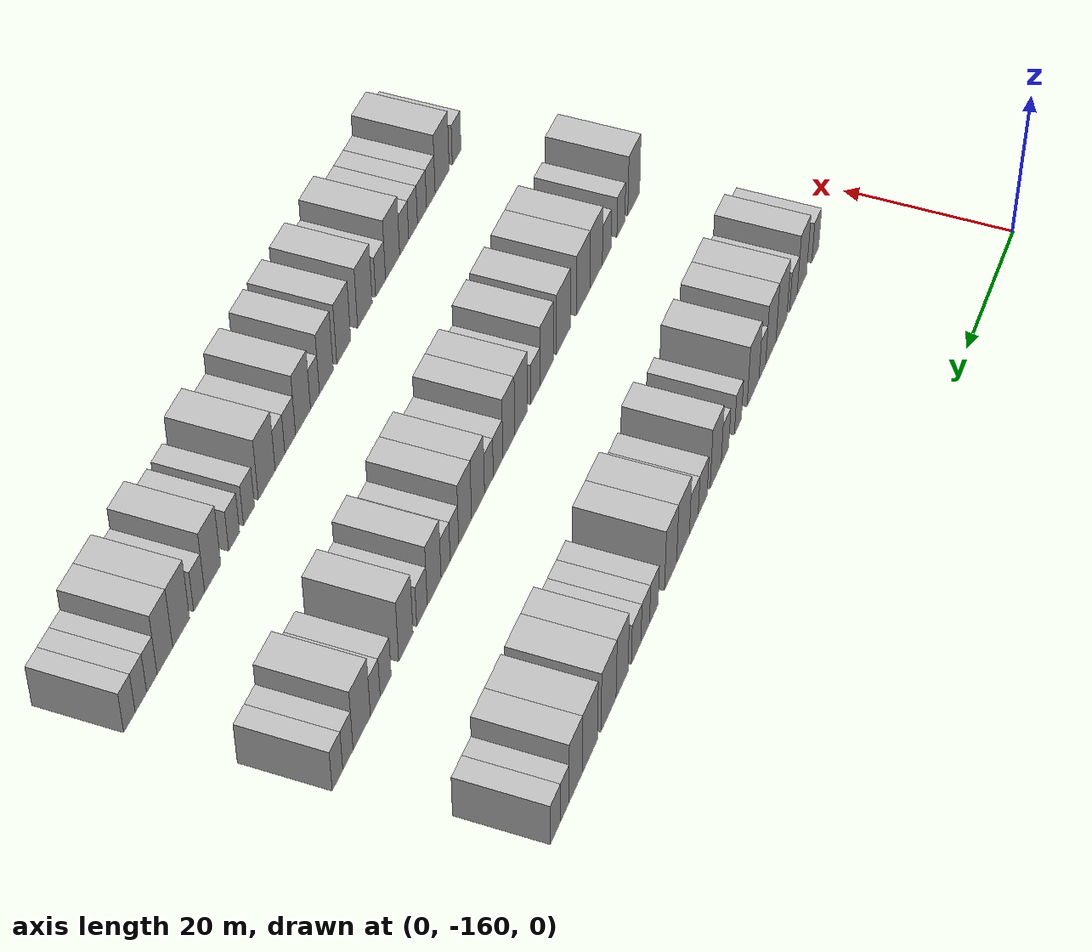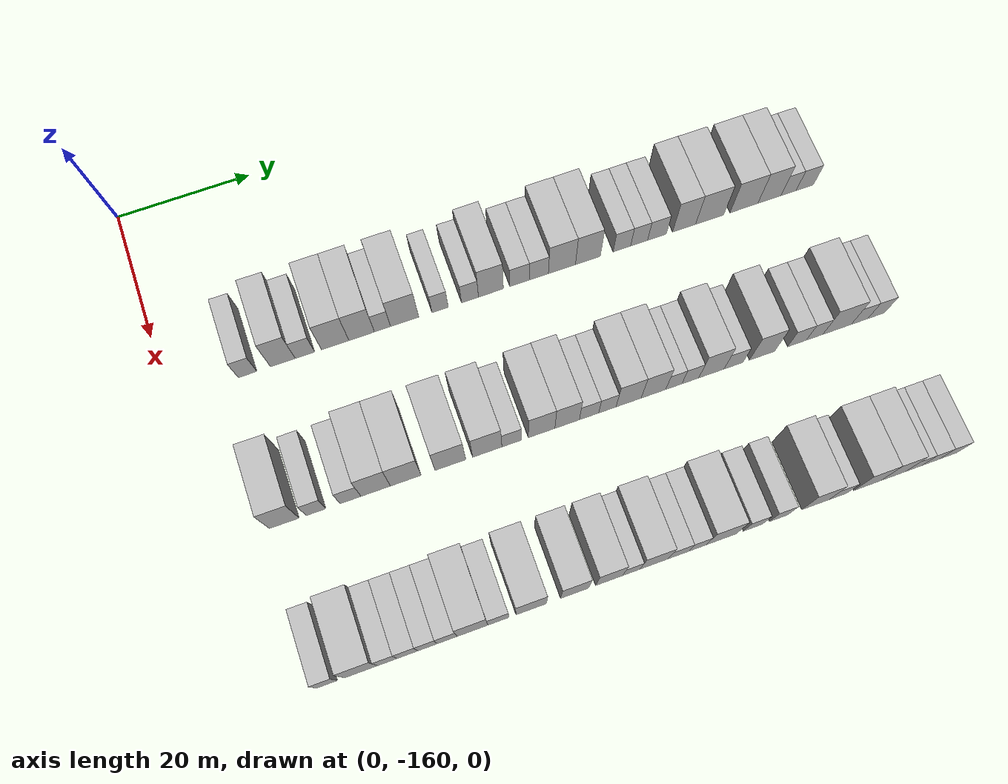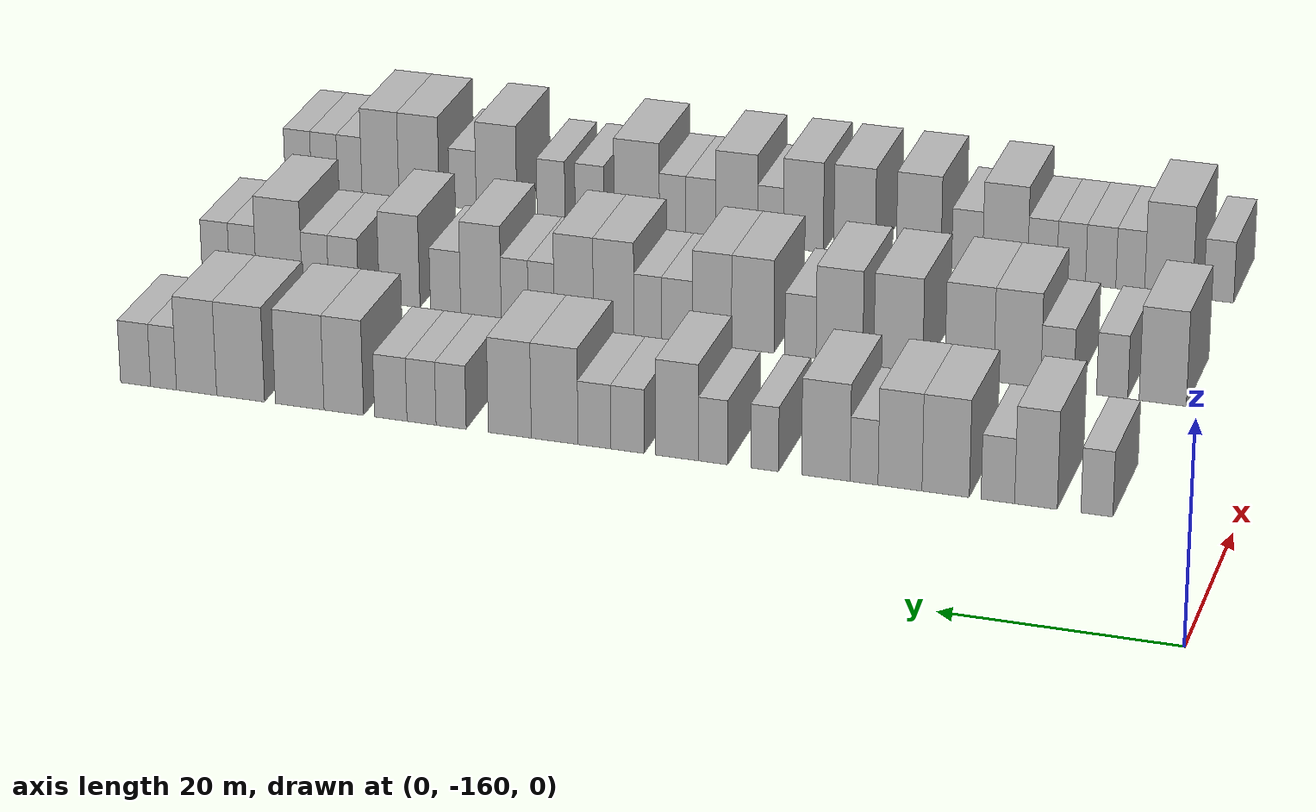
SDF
<sdf version="1.6">
 <world name="default">
  <model name="building_26">
   <static>1</static>
   <pose>25.0000 -148.5722 0 0.000000 0.000000 0.000000</pose>
   <link name="link">
    <pose>0 0 3.00 0 0 0</pose>
    <collision name="collision"><geometry><box><size>10.0000 2.6973 6.0000</size></box></geometry></collision>
    <visual name="visual">
     <cast_shadows>0</cast_shadows>
     <geometry><box><size>10.0000 2.6973 6.0000</size></box></geometry>
     <material>
      <script>
       <uri>model://HANNAS_wall/materials/scripts</uri>
       <uri>model://HANNAS_wall/materials/textures</uri>
       <name>vrc/HANNAS_wall</name>
      </script>
     </material>
    </visual>
   </link>
  </model>
  <model name="building_27">
   <static>1</static>
   <pose>25.0000 -143.4111 0 0.000000 0.000000 0.000000</pose>
   <link name="link">
    <pose>0 0 4.50 0 0 0</pose>
    <collision name="collision"><geometry><box><size>10.0000 3.6249 9.0000</size></box></geometry></collision>
    <visual name="visual">
     <cast_shadows>0</cast_shadows>
     <geometry><box><size>10.0000 3.6249 9.0000</size></box></geometry>
     <material>
      <script>
       <uri>model://HANNAS_wall/materials/scripts</uri>
       <uri>model://HANNAS_wall/materials/textures</uri>
       <name>vrc/HANNAS_wall</name>
      </script>
     </material>
    </visual>
   </link>
  </model>
  <model name="building_28">
   <static>1</static>
   <pose>25.0000 -140.1677 0 0.000000 0.000000 0.000000</pose>
   <link name="link">
    <pose>0 0 3.00 0 0 0</pose>
    <collision name="collision"><geometry><box><size>10.0000 2.8621 6.0000</size></box></geometry></collision>
    <visual name="visual">
     <cast_shadows>0</cast_shadows>
     <geometry><box><size>10.0000 2.8621 6.0000</size></box></geometry>
     <material>
      <script>
       <uri>model://HANNAS_wall/materials/scripts</uri>
       <uri>model://HANNAS_wall/materials/textures</uri>
       <name>vrc/HANNAS_wall</name>
      </script>
     </material>
    </visual>
   </link>
  </model>
  <model name="building_29">
   <static>1</static>
   <pose>25.0000 -135.7053 0 0.000000 0.000000 0.000000</pose>
   <link name="link">
    <pose>0 0 4.50 0 0 0</pose>
    <collision name="collision"><geometry><box><size>10.0000 4.0627 9.0000</size></box></geometry></collision>
    <visual name="visual">
     <cast_shadows>0</cast_shadows>
     <geometry><box><size>10.0000 4.0627 9.0000</size></box></geometry>
     <material>
      <script>
       <uri>model://HANNAS_wall/materials/scripts</uri>
       <uri>model://HANNAS_wall/materials/textures</uri>
       <name>vrc/HANNAS_wall</name>
      </script>
     </material>
    </visual>
   </link>
  </model>
  <model name="building_30">
   <static>1</static>
   <pose>25.0000 -131.7794 0 0.000000 0.000000 0.000000</pose>
   <link name="link">
    <pose>0 0 4.50 0 0 0</pose>
    <collision name="collision"><geometry><box><size>10.0000 3.7890 9.0000</size></box></geometry></collision>
    <visual name="visual">
     <cast_shadows>0</cast_shadows>
     <geometry><box><size>10.0000 3.7890 9.0000</size></box></geometry>
     <material>
      <script>
       <uri>model://HANNAS_wall/materials/scripts</uri>
       <uri>model://HANNAS_wall/materials/textures</uri>
       <name>vrc/HANNAS_wall</name>
      </script>
     </material>
    </visual>
   </link>
  </model>
  <model name="building_31">
   <static>1</static>
   <pose>25.0000 -128.6783 0 0.000000 0.000000 0.000000</pose>
   <link name="link">
    <pose>0 0 3.00 0 0 0</pose>
    <collision name="collision"><geometry><box><size>10.0000 2.4132 6.0000</size></box></geometry></collision>
    <visual name="visual">
     <cast_shadows>0</cast_shadows>
     <geometry><box><size>10.0000 2.4132 6.0000</size></box></geometry>
     <material>
      <script>
       <uri>model://HANNAS_wall/materials/scripts</uri>
       <uri>model://HANNAS_wall/materials/textures</uri>
       <name>vrc/HANNAS_wall</name>
      </script>
     </material>
    </visual>
   </link>
  </model>
  <model name="building_32">
   <static>1</static>
   <pose>25.0000 -125.3618 0 0.000000 0.000000 0.000000</pose>
   <link name="link">
    <pose>0 0 4.50 0 0 0</pose>
    <collision name="collision"><geometry><box><size>10.0000 4.2197 9.0000</size></box></geometry></collision>
    <visual name="visual">
     <cast_shadows>0</cast_shadows>
     <geometry><box><size>10.0000 4.2197 9.0000</size></box></geometry>
     <material>
      <script>
       <uri>model://HANNAS_wall/materials/scripts</uri>
       <uri>model://HANNAS_wall/materials/textures</uri>
       <name>vrc/HANNAS_wall</name>
      </script>
     </material>
    </visual>
   </link>
  </model>
  <model name="building_33">
   <static>1</static>
   <pose>25.0000 -120.0268 0 0.000000 0.000000 0.000000</pose>
   <link name="link">
    <pose>0 0 3.00 0 0 0</pose>
    <collision name="collision"><geometry><box><size>10.0000 2.4503 6.0000</size></box></geometry></collision>
    <visual name="visual">
     <cast_shadows>0</cast_shadows>
     <geometry><box><size>10.0000 2.4503 6.0000</size></box></geometry>
     <material>
      <script>
       <uri>model://HANNAS_wall/materials/scripts</uri>
       <uri>model://HANNAS_wall/materials/textures</uri>
       <name>vrc/HANNAS_wall</name>
      </script>
     </material>
    </visual>
   </link>
  </model>
  <model name="building_34">
   <static>1</static>
   <pose>25.0000 -115.5090 0 0.000000 0.000000 0.000000</pose>
   <link name="link">
    <pose>0 0 3.00 0 0 0</pose>
    <collision name="collision"><geometry><box><size>10.0000 2.5854 6.0000</size></box></geometry></collision>
    <visual name="visual">
     <cast_shadows>0</cast_shadows>
     <geometry><box><size>10.0000 2.5854 6.0000</size></box></geometry>
     <material>
      <script>
       <uri>model://HANNAS_wall/materials/scripts</uri>
       <uri>model://HANNAS_wall/materials/textures</uri>
       <name>vrc/HANNAS_wall</name>
      </script>
     </material>
    </visual>
   </link>
  </model>
  <model name="building_35">
   <static>1</static>
   <pose>25.0000 -112.3240 0 0.000000 0.000000 0.000000</pose>
   <link name="link">
    <pose>0 0 4.50 0 0 0</pose>
    <collision name="collision"><geometry><box><size>10.0000 3.7846 9.0000</size></box></geometry></collision>
    <visual name="visual">
     <cast_shadows>0</cast_shadows>
     <geometry><box><size>10.0000 3.7846 9.0000</size></box></geometry>
     <material>
      <script>
       <uri>model://HANNAS_wall/materials/scripts</uri>
       <uri>model://HANNAS_wall/materials/textures</uri>
       <name>vrc/HANNAS_wall</name>
      </script>
     </material>
    </visual>
   </link>
  </model>
  <model name="building_36">
   <static>1</static>
   <pose>25.0000 -107.9393 0 0.000000 0.000000 0.000000</pose>
   <link name="link">
    <pose>0 0 3.00 0 0 0</pose>
    <collision name="collision"><geometry><box><size>10.0000 2.9846 6.0000</size></box></geometry></collision>
    <visual name="visual">
     <cast_shadows>0</cast_shadows>
     <geometry><box><size>10.0000 2.9846 6.0000</size></box></geometry>
     <material>
      <script>
       <uri>model://HANNAS_wall/materials/scripts</uri>
       <uri>model://HANNAS_wall/materials/textures</uri>
       <name>vrc/HANNAS_wall</name>
      </script>
     </material>
    </visual>
   </link>
  </model>
  <model name="building_37">
   <static>1</static>
   <pose>25.0000 -104.9839 0 0.000000 0.000000 0.000000</pose>
   <link name="link">
    <pose>0 0 3.00 0 0 0</pose>
    <collision name="collision"><geometry><box><size>10.0000 2.9262 6.0000</size></box></geometry></collision>
    <visual name="visual">
     <cast_shadows>0</cast_shadows>
     <geometry><box><size>10.0000 2.9262 6.0000</size></box></geometry>
     <material>
      <script>
       <uri>model://HANNAS_wall/materials/scripts</uri>
       <uri>model://HANNAS_wall/materials/textures</uri>
       <name>vrc/HANNAS_wall</name>
      </script>
     </material>
    </visual>
   </link>
  </model>
  <model name="building_38">
   <static>1</static>
   <pose>25.0000 -101.4277 0 0.000000 0.000000 0.000000</pose>
   <link name="link">
    <pose>0 0 4.50 0 0 0</pose>
    <collision name="collision"><geometry><box><size>10.0000 4.1862 9.0000</size></box></geometry></collision>
    <visual name="visual">
     <cast_shadows>0</cast_shadows>
     <geometry><box><size>10.0000 4.1862 9.0000</size></box></geometry>
     <material>
      <script>
       <uri>model://HANNAS_wall/materials/scripts</uri>
       <uri>model://HANNAS_wall/materials/textures</uri>
       <name>vrc/HANNAS_wall</name>
      </script>
     </material>
    </visual>
   </link>
  </model>
  <model name="building_39">
   <static>1</static>
   <pose>25.0000 -97.4000 0 0.000000 0.000000 0.000000</pose>
   <link name="link">
    <pose>0 0 4.50 0 0 0</pose>
    <collision name="collision"><geometry><box><size>10.0000 3.8694 9.0000</size></box></geometry></collision>
    <visual name="visual">
     <cast_shadows>0</cast_shadows>
     <geometry><box><size>10.0000 3.8694 9.0000</size></box></geometry>
     <material>
      <script>
       <uri>model://HANNAS_wall/materials/scripts</uri>
       <uri>model://HANNAS_wall/materials/textures</uri>
       <name>vrc/HANNAS_wall</name>
      </script>
     </material>
    </visual>
   </link>
  </model>
  <model name="building_40">
   <static>1</static>
   <pose>25.0000 -92.0973 0 0.000000 0.000000 0.000000</pose>
   <link name="link">
    <pose>0 0 3.00 0 0 0</pose>
    <collision name="collision"><geometry><box><size>10.0000 2.7360 6.0000</size></box></geometry></collision>
    <visual name="visual">
     <cast_shadows>0</cast_shadows>
     <geometry><box><size>10.0000 2.7360 6.0000</size></box></geometry>
     <material>
      <script>
       <uri>model://HANNAS_wall/materials/scripts</uri>
       <uri>model://HANNAS_wall/materials/textures</uri>
       <name>vrc/HANNAS_wall</name>
      </script>
     </material>
    </visual>
   </link>
  </model>
  <model name="building_41">
   <static>1</static>
   <pose>25.0000 -89.4035 0 0.000000 0.000000 0.000000</pose>
   <link name="link">
    <pose>0 0 3.00 0 0 0</pose>
    <collision name="collision"><geometry><box><size>10.0000 2.6514 6.0000</size></box></geometry></collision>
    <visual name="visual">
     <cast_shadows>0</cast_shadows>
     <geometry><box><size>10.0000 2.6514 6.0000</size></box></geometry>
     <material>
      <script>
       <uri>model://HANNAS_wall/materials/scripts</uri>
       <uri>model://HANNAS_wall/materials/textures</uri>
       <name>vrc/HANNAS_wall</name>
      </script>
     </material>
    </visual>
   </link>
  </model>
  <model name="building_42">
   <static>1</static>
   <pose>25.0000 -86.6004 0 0.000000 0.000000 0.000000</pose>
   <link name="link">
    <pose>0 0 3.00 0 0 0</pose>
    <collision name="collision"><geometry><box><size>10.0000 2.9548 6.0000</size></box></geometry></collision>
    <visual name="visual">
     <cast_shadows>0</cast_shadows>
     <geometry><box><size>10.0000 2.9548 6.0000</size></box></geometry>
     <material>
      <script>
       <uri>model://HANNAS_wall/materials/scripts</uri>
       <uri>model://HANNAS_wall/materials/textures</uri>
       <name>vrc/HANNAS_wall</name>
      </script>
     </material>
    </visual>
   </link>
  </model>
  <model name="building_43">
   <static>1</static>
   <pose>25.0000 -82.3027 0 0.000000 0.000000 0.000000</pose>
   <link name="link">
    <pose>0 0 4.50 0 0 0</pose>
    <collision name="collision"><geometry><box><size>10.0000 3.6406 9.0000</size></box></geometry></collision>
    <visual name="visual">
     <cast_shadows>0</cast_shadows>
     <geometry><box><size>10.0000 3.6406 9.0000</size></box></geometry>
     <material>
      <script>
       <uri>model://HANNAS_wall/materials/scripts</uri>
       <uri>model://HANNAS_wall/materials/textures</uri>
       <name>vrc/HANNAS_wall</name>
      </script>
     </material>
    </visual>
   </link>
  </model>
  <model name="building_44">
   <static>1</static>
   <pose>25.0000 -78.2367 0 0.000000 0.000000 0.000000</pose>
   <link name="link">
    <pose>0 0 4.50 0 0 0</pose>
    <collision name="collision"><geometry><box><size>10.0000 4.4914 9.0000</size></box></geometry></collision>
    <visual name="visual">
     <cast_shadows>0</cast_shadows>
     <geometry><box><size>10.0000 4.4914 9.0000</size></box></geometry>
     <material>
      <script>
       <uri>model://HANNAS_wall/materials/scripts</uri>
       <uri>model://HANNAS_wall/materials/textures</uri>
       <name>vrc/HANNAS_wall</name>
      </script>
     </material>
    </visual>
   </link>
  </model>
  <model name="building_45">
   <static>1</static>
   <pose>25.0000 -72.7634 0 0.000000 0.000000 0.000000</pose>
   <link name="link">
    <pose>0 0 4.50 0 0 0</pose>
    <collision name="collision"><geometry><box><size>10.0000 4.4552 9.0000</size></box></geometry></collision>
    <visual name="visual">
     <cast_shadows>0</cast_shadows>
     <geometry><box><size>10.0000 4.4552 9.0000</size></box></geometry>
     <material>
      <script>
       <uri>model://HANNAS_wall/materials/scripts</uri>
       <uri>model://HANNAS_wall/materials/textures</uri>
       <name>vrc/HANNAS_wall</name>
      </script>
     </material>
    </visual>
   </link>
  </model>
  <model name="building_46">
   <static>1</static>
   <pose>25.0000 -68.6623 0 0.000000 0.000000 0.000000</pose>
   <link name="link">
    <pose>0 0 4.50 0 0 0</pose>
    <collision name="collision"><geometry><box><size>10.0000 3.7471 9.0000</size></box></geometry></collision>
    <visual name="visual">
     <cast_shadows>0</cast_shadows>
     <geometry><box><size>10.0000 3.7471 9.0000</size></box></geometry>
     <material>
      <script>
       <uri>model://HANNAS_wall/materials/scripts</uri>
       <uri>model://HANNAS_wall/materials/textures</uri>
       <name>vrc/HANNAS_wall</name>
      </script>
     </material>
    </visual>
   </link>
  </model>
  <model name="building_47">
   <static>1</static>
   <pose>25.0000 -65.5764 0 0.000000 0.000000 0.000000</pose>
   <link name="link">
    <pose>0 0 3.00 0 0 0</pose>
    <collision name="collision"><geometry><box><size>10.0000 2.4248 6.0000</size></box></geometry></collision>
    <visual name="visual">
     <cast_shadows>0</cast_shadows>
     <geometry><box><size>10.0000 2.4248 6.0000</size></box></geometry>
     <material>
      <script>
       <uri>model://HANNAS_wall/materials/scripts</uri>
       <uri>model://HANNAS_wall/materials/textures</uri>
       <name>vrc/HANNAS_wall</name>
      </script>
     </material>
    </visual>
   </link>
  </model>
  <model name="building_48">
   <static>1</static>
   <pose>25.0000 -62.9529 0 0.000000 0.000000 0.000000</pose>
   <link name="link">
    <pose>0 0 3.00 0 0 0</pose>
    <collision name="collision"><geometry><box><size>10.0000 2.8220 6.0000</size></box></geometry></collision>
    <visual name="visual">
     <cast_shadows>0</cast_shadows>
     <geometry><box><size>10.0000 2.8220 6.0000</size></box></geometry>
     <material>
      <script>
       <uri>model://HANNAS_wall/materials/scripts</uri>
       <uri>model://HANNAS_wall/materials/textures</uri>
       <name>vrc/HANNAS_wall</name>
      </script>
     </material>
    </visual>
   </link>
  </model>
  <model name="building_147">
   <static>1</static>
   <pose>47.0000 -149.5585 0 0.000000 0.000000 0.000000</pose>
   <link name="link">
    <pose>0 0 4.50 0 0 0</pose>
    <collision name="collision"><geometry><box><size>10.0000 4.1596 9.0000</size></box></geometry></collision>
    <visual name="visual">
     <cast_shadows>0</cast_shadows>
     <geometry><box><size>10.0000 4.1596 9.0000</size></box></geometry>
     <material>
      <script>
       <uri>model://HANNAS_wall/materials/scripts</uri>
       <uri>model://HANNAS_wall/materials/textures</uri>
       <name>vrc/HANNAS_wall</name>
      </script>
     </material>
    </visual>
   </link>
  </model>
  <model name="building_148">
   <static>1</static>
   <pose>47.0000 -145.0933 0 0.000000 0.000000 0.000000</pose>
   <link name="link">
    <pose>0 0 3.00 0 0 0</pose>
    <collision name="collision"><geometry><box><size>10.0000 2.7708 6.0000</size></box></geometry></collision>
    <visual name="visual">
     <cast_shadows>0</cast_shadows>
     <geometry><box><size>10.0000 2.7708 6.0000</size></box></geometry>
     <material>
      <script>
       <uri>model://HANNAS_wall/materials/scripts</uri>
       <uri>model://HANNAS_wall/materials/textures</uri>
       <name>vrc/HANNAS_wall</name>
      </script>
     </material>
    </visual>
   </link>
  </model>
  <model name="building_149">
   <static>1</static>
   <pose>47.0000 -140.2268 0 0.000000 0.000000 0.000000</pose>
   <link name="link">
    <pose>0 0 3.00 0 0 0</pose>
    <collision name="collision"><geometry><box><size>10.0000 2.9624 6.0000</size></box></geometry></collision>
    <visual name="visual">
     <cast_shadows>0</cast_shadows>
     <geometry><box><size>10.0000 2.9624 6.0000</size></box></geometry>
     <material>
      <script>
       <uri>model://HANNAS_wall/materials/scripts</uri>
       <uri>model://HANNAS_wall/materials/textures</uri>
       <name>vrc/HANNAS_wall</name>
      </script>
     </material>
    </visual>
   </link>
  </model>
  <model name="building_150">
   <static>1</static>
   <pose>47.0000 -136.6430 0 0.000000 0.000000 0.000000</pose>
   <link name="link">
    <pose>0 0 4.50 0 0 0</pose>
    <collision name="collision"><geometry><box><size>10.0000 4.2051 9.0000</size></box></geometry></collision>
    <visual name="visual">
     <cast_shadows>0</cast_shadows>
     <geometry><box><size>10.0000 4.2051 9.0000</size></box></geometry>
     <material>
      <script>
       <uri>model://HANNAS_wall/materials/scripts</uri>
       <uri>model://HANNAS_wall/materials/textures</uri>
       <name>vrc/HANNAS_wall</name>
      </script>
     </material>
    </visual>
   </link>
  </model>
  <model name="building_151">
   <static>1</static>
   <pose>47.0000 -132.3436 0 0.000000 0.000000 0.000000</pose>
   <link name="link">
    <pose>0 0 4.50 0 0 0</pose>
    <collision name="collision"><geometry><box><size>10.0000 4.3937 9.0000</size></box></geometry></collision>
    <visual name="visual">
     <cast_shadows>0</cast_shadows>
     <geometry><box><size>10.0000 4.3937 9.0000</size></box></geometry>
     <material>
      <script>
       <uri>model://HANNAS_wall/materials/scripts</uri>
       <uri>model://HANNAS_wall/materials/textures</uri>
       <name>vrc/HANNAS_wall</name>
      </script>
     </material>
    </visual>
   </link>
  </model>
  <model name="building_152">
   <static>1</static>
   <pose>47.0000 -125.9268 0 0.000000 0.000000 0.000000</pose>
   <link name="link">
    <pose>0 0 4.50 0 0 0</pose>
    <collision name="collision"><geometry><box><size>10.0000 4.4400 9.0000</size></box></geometry></collision>
    <visual name="visual">
     <cast_shadows>0</cast_shadows>
     <geometry><box><size>10.0000 4.4400 9.0000</size></box></geometry>
     <material>
      <script>
       <uri>model://HANNAS_wall/materials/scripts</uri>
       <uri>model://HANNAS_wall/materials/textures</uri>
       <name>vrc/HANNAS_wall</name>
      </script>
     </material>
    </visual>
   </link>
  </model>
  <model name="building_153">
   <static>1</static>
   <pose>47.0000 -120.5760 0 0.000000 0.000000 0.000000</pose>
   <link name="link">
    <pose>0 0 4.50 0 0 0</pose>
    <collision name="collision"><geometry><box><size>10.0000 4.2616 9.0000</size></box></geometry></collision>
    <visual name="visual">
     <cast_shadows>0</cast_shadows>
     <geometry><box><size>10.0000 4.2616 9.0000</size></box></geometry>
     <material>
      <script>
       <uri>model://HANNAS_wall/materials/scripts</uri>
       <uri>model://HANNAS_wall/materials/textures</uri>
       <name>vrc/HANNAS_wall</name>
      </script>
     </material>
    </visual>
   </link>
  </model>
  <model name="building_154">
   <static>1</static>
   <pose>47.0000 -117.0151 0 0.000000 0.000000 0.000000</pose>
   <link name="link">
    <pose>0 0 3.00 0 0 0</pose>
    <collision name="collision"><geometry><box><size>10.0000 2.8600 6.0000</size></box></geometry></collision>
    <visual name="visual">
     <cast_shadows>0</cast_shadows>
     <geometry><box><size>10.0000 2.8600 6.0000</size></box></geometry>
     <material>
      <script>
       <uri>model://HANNAS_wall/materials/scripts</uri>
       <uri>model://HANNAS_wall/materials/textures</uri>
       <name>vrc/HANNAS_wall</name>
      </script>
     </material>
    </visual>
   </link>
  </model>
  <model name="building_155">
   <static>1</static>
   <pose>47.0000 -112.6298 0 0.000000 0.000000 0.000000</pose>
   <link name="link">
    <pose>0 0 4.50 0 0 0</pose>
    <collision name="collision"><geometry><box><size>10.0000 3.9106 9.0000</size></box></geometry></collision>
    <visual name="visual">
     <cast_shadows>0</cast_shadows>
     <geometry><box><size>10.0000 3.9106 9.0000</size></box></geometry>
     <material>
      <script>
       <uri>model://HANNAS_wall/materials/scripts</uri>
       <uri>model://HANNAS_wall/materials/textures</uri>
       <name>vrc/HANNAS_wall</name>
      </script>
     </material>
    </visual>
   </link>
  </model>
  <model name="building_156">
   <static>1</static>
   <pose>47.0000 -108.8638 0 0.000000 0.000000 0.000000</pose>
   <link name="link">
    <pose>0 0 4.50 0 0 0</pose>
    <collision name="collision"><geometry><box><size>10.0000 3.6214 9.0000</size></box></geometry></collision>
    <visual name="visual">
     <cast_shadows>0</cast_shadows>
     <geometry><box><size>10.0000 3.6214 9.0000</size></box></geometry>
     <material>
      <script>
       <uri>model://HANNAS_wall/materials/scripts</uri>
       <uri>model://HANNAS_wall/materials/textures</uri>
       <name>vrc/HANNAS_wall</name>
      </script>
     </material>
    </visual>
   </link>
  </model>
  <model name="building_157">
   <static>1</static>
   <pose>47.0000 -105.6234 0 0.000000 0.000000 0.000000</pose>
   <link name="link">
    <pose>0 0 3.00 0 0 0</pose>
    <collision name="collision"><geometry><box><size>10.0000 2.8596 6.0000</size></box></geometry></collision>
    <visual name="visual">
     <cast_shadows>0</cast_shadows>
     <geometry><box><size>10.0000 2.8596 6.0000</size></box></geometry>
     <material>
      <script>
       <uri>model://HANNAS_wall/materials/scripts</uri>
       <uri>model://HANNAS_wall/materials/textures</uri>
       <name>vrc/HANNAS_wall</name>
      </script>
     </material>
    </visual>
   </link>
  </model>
  <model name="building_158">
   <static>1</static>
   <pose>47.0000 -102.9044 0 0.000000 0.000000 0.000000</pose>
   <link name="link">
    <pose>0 0 3.00 0 0 0</pose>
    <collision name="collision"><geometry><box><size>10.0000 2.5783 6.0000</size></box></geometry></collision>
    <visual name="visual">
     <cast_shadows>0</cast_shadows>
     <geometry><box><size>10.0000 2.5783 6.0000</size></box></geometry>
     <material>
      <script>
       <uri>model://HANNAS_wall/materials/scripts</uri>
       <uri>model://HANNAS_wall/materials/textures</uri>
       <name>vrc/HANNAS_wall</name>
      </script>
     </material>
    </visual>
   </link>
  </model>
  <model name="building_159">
   <static>1</static>
   <pose>47.0000 -99.7245 0 0.000000 0.000000 0.000000</pose>
   <link name="link">
    <pose>0 0 4.50 0 0 0</pose>
    <collision name="collision"><geometry><box><size>10.0000 3.7816 9.0000</size></box></geometry></collision>
    <visual name="visual">
     <cast_shadows>0</cast_shadows>
     <geometry><box><size>10.0000 3.7816 9.0000</size></box></geometry>
     <material>
      <script>
       <uri>model://HANNAS_wall/materials/scripts</uri>
       <uri>model://HANNAS_wall/materials/textures</uri>
       <name>vrc/HANNAS_wall</name>
      </script>
     </material>
    </visual>
   </link>
  </model>
  <model name="building_160">
   <static>1</static>
   <pose>47.0000 -95.9844 0 0.000000 0.000000 0.000000</pose>
   <link name="link">
    <pose>0 0 4.50 0 0 0</pose>
    <collision name="collision"><geometry><box><size>10.0000 3.6984 9.0000</size></box></geometry></collision>
    <visual name="visual">
     <cast_shadows>0</cast_shadows>
     <geometry><box><size>10.0000 3.6984 9.0000</size></box></geometry>
     <material>
      <script>
       <uri>model://HANNAS_wall/materials/scripts</uri>
       <uri>model://HANNAS_wall/materials/textures</uri>
       <name>vrc/HANNAS_wall</name>
      </script>
     </material>
    </visual>
   </link>
  </model>
  <model name="building_161">
   <static>1</static>
   <pose>47.0000 -92.9121 0 0.000000 0.000000 0.000000</pose>
   <link name="link">
    <pose>0 0 3.00 0 0 0</pose>
    <collision name="collision"><geometry><box><size>10.0000 2.4462 6.0000</size></box></geometry></collision>
    <visual name="visual">
     <cast_shadows>0</cast_shadows>
     <geometry><box><size>10.0000 2.4462 6.0000</size></box></geometry>
     <material>
      <script>
       <uri>model://HANNAS_wall/materials/scripts</uri>
       <uri>model://HANNAS_wall/materials/textures</uri>
       <name>vrc/HANNAS_wall</name>
      </script>
     </material>
    </visual>
   </link>
  </model>
  <model name="building_162">
   <static>1</static>
   <pose>47.0000 -90.4103 0 0.000000 0.000000 0.000000</pose>
   <link name="link">
    <pose>0 0 3.00 0 0 0</pose>
    <collision name="collision"><geometry><box><size>10.0000 2.5574 6.0000</size></box></geometry></collision>
    <visual name="visual">
     <cast_shadows>0</cast_shadows>
     <geometry><box><size>10.0000 2.5574 6.0000</size></box></geometry>
     <material>
      <script>
       <uri>model://HANNAS_wall/materials/scripts</uri>
       <uri>model://HANNAS_wall/materials/textures</uri>
       <name>vrc/HANNAS_wall</name>
      </script>
     </material>
    </visual>
   </link>
  </model>
  <model name="building_163">
   <static>1</static>
   <pose>47.0000 -87.2046 0 0.000000 0.000000 0.000000</pose>
   <link name="link">
    <pose>0 0 4.50 0 0 0</pose>
    <collision name="collision"><geometry><box><size>10.0000 3.8541 9.0000</size></box></geometry></collision>
    <visual name="visual">
     <cast_shadows>0</cast_shadows>
     <geometry><box><size>10.0000 3.8541 9.0000</size></box></geometry>
     <material>
      <script>
       <uri>model://HANNAS_wall/materials/scripts</uri>
       <uri>model://HANNAS_wall/materials/textures</uri>
       <name>vrc/HANNAS_wall</name>
      </script>
     </material>
    </visual>
   </link>
  </model>
  <model name="building_164">
   <static>1</static>
   <pose>47.0000 -83.8338 0 0.000000 0.000000 0.000000</pose>
   <link name="link">
    <pose>0 0 3.00 0 0 0</pose>
    <collision name="collision"><geometry><box><size>10.0000 2.8876 6.0000</size></box></geometry></collision>
    <visual name="visual">
     <cast_shadows>0</cast_shadows>
     <geometry><box><size>10.0000 2.8876 6.0000</size></box></geometry>
     <material>
      <script>
       <uri>model://HANNAS_wall/materials/scripts</uri>
       <uri>model://HANNAS_wall/materials/textures</uri>
       <name>vrc/HANNAS_wall</name>
      </script>
     </material>
    </visual>
   </link>
  </model>
  <model name="building_165">
   <static>1</static>
   <pose>47.0000 -79.4456 0 0.000000 0.000000 0.000000</pose>
   <link name="link">
    <pose>0 0 4.50 0 0 0</pose>
    <collision name="collision"><geometry><box><size>10.0000 3.8888 9.0000</size></box></geometry></collision>
    <visual name="visual">
     <cast_shadows>0</cast_shadows>
     <geometry><box><size>10.0000 3.8888 9.0000</size></box></geometry>
     <material>
      <script>
       <uri>model://HANNAS_wall/materials/scripts</uri>
       <uri>model://HANNAS_wall/materials/textures</uri>
       <name>vrc/HANNAS_wall</name>
      </script>
     </material>
    </visual>
   </link>
  </model>
  <model name="building_166">
   <static>1</static>
   <pose>47.0000 -74.0574 0 0.000000 0.000000 0.000000</pose>
   <link name="link">
    <pose>0 0 3.00 0 0 0</pose>
    <collision name="collision"><geometry><box><size>10.0000 2.8874 6.0000</size></box></geometry></collision>
    <visual name="visual">
     <cast_shadows>0</cast_shadows>
     <geometry><box><size>10.0000 2.8874 6.0000</size></box></geometry>
     <material>
      <script>
       <uri>model://HANNAS_wall/materials/scripts</uri>
       <uri>model://HANNAS_wall/materials/textures</uri>
       <name>vrc/HANNAS_wall</name>
      </script>
     </material>
    </visual>
   </link>
  </model>
  <model name="building_167">
   <static>1</static>
   <pose>47.0000 -71.3302 0 0.000000 0.000000 0.000000</pose>
   <link name="link">
    <pose>0 0 3.00 0 0 0</pose>
    <collision name="collision"><geometry><box><size>10.0000 2.5670 6.0000</size></box></geometry></collision>
    <visual name="visual">
     <cast_shadows>0</cast_shadows>
     <geometry><box><size>10.0000 2.5670 6.0000</size></box></geometry>
     <material>
      <script>
       <uri>model://HANNAS_wall/materials/scripts</uri>
       <uri>model://HANNAS_wall/materials/textures</uri>
       <name>vrc/HANNAS_wall</name>
      </script>
     </material>
    </visual>
   </link>
  </model>
  <model name="building_168">
   <static>1</static>
   <pose>47.0000 -67.8181 0 0.000000 0.000000 0.000000</pose>
   <link name="link">
    <pose>0 0 4.50 0 0 0</pose>
    <collision name="collision"><geometry><box><size>10.0000 4.4571 9.0000</size></box></geometry></collision>
    <visual name="visual">
     <cast_shadows>0</cast_shadows>
     <geometry><box><size>10.0000 4.4571 9.0000</size></box></geometry>
     <material>
      <script>
       <uri>model://HANNAS_wall/materials/scripts</uri>
       <uri>model://HANNAS_wall/materials/textures</uri>
       <name>vrc/HANNAS_wall</name>
      </script>
     </material>
    </visual>
   </link>
  </model>
  <model name="building_169">
   <static>1</static>
   <pose>47.0000 -64.2898 0 0.000000 0.000000 0.000000</pose>
   <link name="link">
    <pose>0 0 3.00 0 0 0</pose>
    <collision name="collision"><geometry><box><size>10.0000 2.5996 6.0000</size></box></geometry></collision>
    <visual name="visual">
     <cast_shadows>0</cast_shadows>
     <geometry><box><size>10.0000 2.5996 6.0000</size></box></geometry>
     <material>
      <script>
       <uri>model://HANNAS_wall/materials/scripts</uri>
       <uri>model://HANNAS_wall/materials/textures</uri>
       <name>vrc/HANNAS_wall</name>
      </script>
     </material>
    </visual>
   </link>
  </model>
  <model name="building_170">
   <static>1</static>
   <pose>47.0000 -61.6516 0 0.000000 0.000000 0.000000</pose>
   <link name="link">
    <pose>0 0 3.00 0 0 0</pose>
    <collision name="collision"><geometry><box><size>10.0000 2.6769 6.0000</size></box></geometry></collision>
    <visual name="visual">
     <cast_shadows>0</cast_shadows>
     <geometry><box><size>10.0000 2.6769 6.0000</size></box></geometry>
     <material>
      <script>
       <uri>model://HANNAS_wall/materials/scripts</uri>
       <uri>model://HANNAS_wall/materials/textures</uri>
       <name>vrc/HANNAS_wall</name>
      </script>
     </material>
    </visual>
   </link>
  </model>
  <model name="building_260">
   <static>1</static>
   <pose>69.0000 -150.1591 0 0.000000 0.000000 0.000000</pose>
   <link name="link">
    <pose>0 0 3.00 0 0 0</pose>
    <collision name="collision"><geometry><box><size>10.0000 2.7680 6.0000</size></box></geometry></collision>
    <visual name="visual">
     <cast_shadows>0</cast_shadows>
     <geometry><box><size>10.0000 2.7680 6.0000</size></box></geometry>
     <material>
      <script>
       <uri>model://HANNAS_wall/materials/scripts</uri>
       <uri>model://HANNAS_wall/materials/textures</uri>
       <name>vrc/HANNAS_wall</name>
      </script>
     </material>
    </visual>
   </link>
  </model>
  <model name="building_261">
   <static>1</static>
   <pose>69.0000 -145.5580 0 0.000000 0.000000 0.000000</pose>
   <link name="link">
    <pose>0 0 4.50 0 0 0</pose>
    <collision name="collision"><geometry><box><size>10.0000 4.4341 9.0000</size></box></geometry></collision>
    <visual name="visual">
     <cast_shadows>0</cast_shadows>
     <geometry><box><size>10.0000 4.4341 9.0000</size></box></geometry>
     <material>
      <script>
       <uri>model://HANNAS_wall/materials/scripts</uri>
       <uri>model://HANNAS_wall/materials/textures</uri>
       <name>vrc/HANNAS_wall</name>
      </script>
     </material>
    </visual>
   </link>
  </model>
  <model name="building_262">
   <static>1</static>
   <pose>69.0000 -142.0053 0 0.000000 0.000000 0.000000</pose>
   <link name="link">
    <pose>0 0 3.00 0 0 0</pose>
    <collision name="collision"><geometry><box><size>10.0000 2.6712 6.0000</size></box></geometry></collision>
    <visual name="visual">
     <cast_shadows>0</cast_shadows>
     <geometry><box><size>10.0000 2.6712 6.0000</size></box></geometry>
     <material>
      <script>
       <uri>model://HANNAS_wall/materials/scripts</uri>
       <uri>model://HANNAS_wall/materials/textures</uri>
       <name>vrc/HANNAS_wall</name>
      </script>
     </material>
    </visual>
   </link>
  </model>
  <model name="building_263">
   <static>1</static>
   <pose>69.0000 -139.2621 0 0.000000 0.000000 0.000000</pose>
   <link name="link">
    <pose>0 0 3.00 0 0 0</pose>
    <collision name="collision"><geometry><box><size>10.0000 2.8154 6.0000</size></box></geometry></collision>
    <visual name="visual">
     <cast_shadows>0</cast_shadows>
     <geometry><box><size>10.0000 2.8154 6.0000</size></box></geometry>
     <material>
      <script>
       <uri>model://HANNAS_wall/materials/scripts</uri>
       <uri>model://HANNAS_wall/materials/textures</uri>
       <name>vrc/HANNAS_wall</name>
      </script>
     </material>
    </visual>
   </link>
  </model>
  <model name="building_264">
   <static>1</static>
   <pose>69.0000 -136.5137 0 0.000000 0.000000 0.000000</pose>
   <link name="link">
    <pose>0 0 3.00 0 0 0</pose>
    <collision name="collision"><geometry><box><size>10.0000 2.6813 6.0000</size></box></geometry></collision>
    <visual name="visual">
     <cast_shadows>0</cast_shadows>
     <geometry><box><size>10.0000 2.6813 6.0000</size></box></geometry>
     <material>
      <script>
       <uri>model://HANNAS_wall/materials/scripts</uri>
       <uri>model://HANNAS_wall/materials/textures</uri>
       <name>vrc/HANNAS_wall</name>
      </script>
     </material>
    </visual>
   </link>
  </model>
  <model name="building_265">
   <static>1</static>
   <pose>69.0000 -133.8006 0 0.000000 0.000000 0.000000</pose>
   <link name="link">
    <pose>0 0 3.00 0 0 0</pose>
    <collision name="collision"><geometry><box><size>10.0000 2.7450 6.0000</size></box></geometry></collision>
    <visual name="visual">
     <cast_shadows>0</cast_shadows>
     <geometry><box><size>10.0000 2.7450 6.0000</size></box></geometry>
     <material>
      <script>
       <uri>model://HANNAS_wall/materials/scripts</uri>
       <uri>model://HANNAS_wall/materials/textures</uri>
       <name>vrc/HANNAS_wall</name>
      </script>
     </material>
    </visual>
   </link>
  </model>
  <model name="building_266">
   <static>1</static>
   <pose>69.0000 -130.3113 0 0.000000 0.000000 0.000000</pose>
   <link name="link">
    <pose>0 0 4.50 0 0 0</pose>
    <collision name="collision"><geometry><box><size>10.0000 4.2335 9.0000</size></box></geometry></collision>
    <visual name="visual">
     <cast_shadows>0</cast_shadows>
     <geometry><box><size>10.0000 4.2335 9.0000</size></box></geometry>
     <material>
      <script>
       <uri>model://HANNAS_wall/materials/scripts</uri>
       <uri>model://HANNAS_wall/materials/textures</uri>
       <name>vrc/HANNAS_wall</name>
      </script>
     </material>
    </visual>
   </link>
  </model>
  <model name="building_267">
   <static>1</static>
   <pose>69.0000 -126.7353 0 0.000000 0.000000 0.000000</pose>
   <link name="link">
    <pose>0 0 3.00 0 0 0</pose>
    <collision name="collision"><geometry><box><size>10.0000 2.9187 6.0000</size></box></geometry></collision>
    <visual name="visual">
     <cast_shadows>0</cast_shadows>
     <geometry><box><size>10.0000 2.9187 6.0000</size></box></geometry>
     <material>
      <script>
       <uri>model://HANNAS_wall/materials/scripts</uri>
       <uri>model://HANNAS_wall/materials/textures</uri>
       <name>vrc/HANNAS_wall</name>
      </script>
     </material>
    </visual>
   </link>
  </model>
  <model name="building_268">
   <static>1</static>
   <pose>69.0000 -122.1542 0 0.000000 0.000000 0.000000</pose>
   <link name="link">
    <pose>0 0 4.50 0 0 0</pose>
    <collision name="collision"><geometry><box><size>10.0000 4.2435 9.0000</size></box></geometry></collision>
    <visual name="visual">
     <cast_shadows>0</cast_shadows>
     <geometry><box><size>10.0000 4.2435 9.0000</size></box></geometry>
     <material>
      <script>
       <uri>model://HANNAS_wall/materials/scripts</uri>
       <uri>model://HANNAS_wall/materials/textures</uri>
       <name>vrc/HANNAS_wall</name>
      </script>
     </material>
    </visual>
   </link>
  </model>
  <model name="building_269">
   <static>1</static>
   <pose>69.0000 -116.0523 0 0.000000 0.000000 0.000000</pose>
   <link name="link">
    <pose>0 0 4.50 0 0 0</pose>
    <collision name="collision"><geometry><box><size>10.0000 3.9603 9.0000</size></box></geometry></collision>
    <visual name="visual">
     <cast_shadows>0</cast_shadows>
     <geometry><box><size>10.0000 3.9603 9.0000</size></box></geometry>
     <material>
      <script>
       <uri>model://HANNAS_wall/materials/scripts</uri>
       <uri>model://HANNAS_wall/materials/textures</uri>
       <name>vrc/HANNAS_wall</name>
      </script>
     </material>
    </visual>
   </link>
  </model>
  <model name="building_270">
   <static>1</static>
   <pose>69.0000 -111.1507 0 0.000000 0.000000 0.000000</pose>
   <link name="link">
    <pose>0 0 4.50 0 0 0</pose>
    <collision name="collision"><geometry><box><size>10.0000 3.8430 9.0000</size></box></geometry></collision>
    <visual name="visual">
     <cast_shadows>0</cast_shadows>
     <geometry><box><size>10.0000 3.8430 9.0000</size></box></geometry>
     <material>
      <script>
       <uri>model://HANNAS_wall/materials/scripts</uri>
       <uri>model://HANNAS_wall/materials/textures</uri>
       <name>vrc/HANNAS_wall</name>
      </script>
     </material>
    </visual>
   </link>
  </model>
  <model name="building_271">
   <static>1</static>
   <pose>69.0000 -107.9954 0 0.000000 0.000000 0.000000</pose>
   <link name="link">
    <pose>0 0 3.00 0 0 0</pose>
    <collision name="collision"><geometry><box><size>10.0000 2.4677 6.0000</size></box></geometry></collision>
    <visual name="visual">
     <cast_shadows>0</cast_shadows>
     <geometry><box><size>10.0000 2.4677 6.0000</size></box></geometry>
     <material>
      <script>
       <uri>model://HANNAS_wall/materials/scripts</uri>
       <uri>model://HANNAS_wall/materials/textures</uri>
       <name>vrc/HANNAS_wall</name>
      </script>
     </material>
    </visual>
   </link>
  </model>
  <model name="building_272">
   <static>1</static>
   <pose>69.0000 -104.7255 0 0.000000 0.000000 0.000000</pose>
   <link name="link">
    <pose>0 0 4.50 0 0 0</pose>
    <collision name="collision"><geometry><box><size>10.0000 4.0721 9.0000</size></box></geometry></collision>
    <visual name="visual">
     <cast_shadows>0</cast_shadows>
     <geometry><box><size>10.0000 4.0721 9.0000</size></box></geometry>
     <material>
      <script>
       <uri>model://HANNAS_wall/materials/scripts</uri>
       <uri>model://HANNAS_wall/materials/textures</uri>
       <name>vrc/HANNAS_wall</name>
      </script>
     </material>
    </visual>
   </link>
  </model>
  <model name="building_273">
   <static>1</static>
   <pose>69.0000 -101.2465 0 0.000000 0.000000 0.000000</pose>
   <link name="link">
    <pose>0 0 3.00 0 0 0</pose>
    <collision name="collision"><geometry><box><size>10.0000 2.8860 6.0000</size></box></geometry></collision>
    <visual name="visual">
     <cast_shadows>0</cast_shadows>
     <geometry><box><size>10.0000 2.8860 6.0000</size></box></geometry>
     <material>
      <script>
       <uri>model://HANNAS_wall/materials/scripts</uri>
       <uri>model://HANNAS_wall/materials/textures</uri>
       <name>vrc/HANNAS_wall</name>
      </script>
     </material>
    </visual>
   </link>
  </model>
  <model name="building_274">
   <static>1</static>
   <pose>69.0000 -98.5111 0 0.000000 0.000000 0.000000</pose>
   <link name="link">
    <pose>0 0 3.00 0 0 0</pose>
    <collision name="collision"><geometry><box><size>10.0000 2.5847 6.0000</size></box></geometry></collision>
    <visual name="visual">
     <cast_shadows>0</cast_shadows>
     <geometry><box><size>10.0000 2.5847 6.0000</size></box></geometry>
     <material>
      <script>
       <uri>model://HANNAS_wall/materials/scripts</uri>
       <uri>model://HANNAS_wall/materials/textures</uri>
       <name>vrc/HANNAS_wall</name>
      </script>
     </material>
    </visual>
   </link>
  </model>
  <model name="building_275">
   <static>1</static>
   <pose>69.0000 -95.0041 0 0.000000 0.000000 0.000000</pose>
   <link name="link">
    <pose>0 0 4.50 0 0 0</pose>
    <collision name="collision"><geometry><box><size>10.0000 4.4294 9.0000</size></box></geometry></collision>
    <visual name="visual">
     <cast_shadows>0</cast_shadows>
     <geometry><box><size>10.0000 4.4294 9.0000</size></box></geometry>
     <material>
      <script>
       <uri>model://HANNAS_wall/materials/scripts</uri>
       <uri>model://HANNAS_wall/materials/textures</uri>
       <name>vrc/HANNAS_wall</name>
      </script>
     </material>
    </visual>
   </link>
  </model>
  <model name="building_276">
   <static>1</static>
   <pose>69.0000 -90.3715 0 0.000000 0.000000 0.000000</pose>
   <link name="link">
    <pose>0 0 3.00 0 0 0</pose>
    <collision name="collision"><geometry><box><size>10.0000 2.8356 6.0000</size></box></geometry></collision>
    <visual name="visual">
     <cast_shadows>0</cast_shadows>
     <geometry><box><size>10.0000 2.8356 6.0000</size></box></geometry>
     <material>
      <script>
       <uri>model://HANNAS_wall/materials/scripts</uri>
       <uri>model://HANNAS_wall/materials/textures</uri>
       <name>vrc/HANNAS_wall</name>
      </script>
     </material>
    </visual>
   </link>
  </model>
  <model name="building_277">
   <static>1</static>
   <pose>69.0000 -86.5735 0 0.000000 0.000000 0.000000</pose>
   <link name="link">
    <pose>0 0 3.00 0 0 0</pose>
    <collision name="collision"><geometry><box><size>10.0000 2.7604 6.0000</size></box></geometry></collision>
    <visual name="visual">
     <cast_shadows>0</cast_shadows>
     <geometry><box><size>10.0000 2.7604 6.0000</size></box></geometry>
     <material>
      <script>
       <uri>model://HANNAS_wall/materials/scripts</uri>
       <uri>model://HANNAS_wall/materials/textures</uri>
       <name>vrc/HANNAS_wall</name>
      </script>
     </material>
    </visual>
   </link>
  </model>
  <model name="building_278">
   <static>1</static>
   <pose>69.0000 -81.1725 0 0.000000 0.000000 0.000000</pose>
   <link name="link">
    <pose>0 0 4.50 0 0 0</pose>
    <collision name="collision"><geometry><box><size>10.0000 4.0417 9.0000</size></box></geometry></collision>
    <visual name="visual">
     <cast_shadows>0</cast_shadows>
     <geometry><box><size>10.0000 4.0417 9.0000</size></box></geometry>
     <material>
      <script>
       <uri>model://HANNAS_wall/materials/scripts</uri>
       <uri>model://HANNAS_wall/materials/textures</uri>
       <name>vrc/HANNAS_wall</name>
      </script>
     </material>
    </visual>
   </link>
  </model>
  <model name="building_279">
   <static>1</static>
   <pose>69.0000 -77.8074 0 0.000000 0.000000 0.000000</pose>
   <link name="link">
    <pose>0 0 3.00 0 0 0</pose>
    <collision name="collision"><geometry><box><size>10.0000 2.6883 6.0000</size></box></geometry></collision>
    <visual name="visual">
     <cast_shadows>0</cast_shadows>
     <geometry><box><size>10.0000 2.6883 6.0000</size></box></geometry>
     <material>
      <script>
       <uri>model://HANNAS_wall/materials/scripts</uri>
       <uri>model://HANNAS_wall/materials/textures</uri>
       <name>vrc/HANNAS_wall</name>
      </script>
     </material>
    </visual>
   </link>
  </model>
  <model name="building_280">
   <static>1</static>
   <pose>69.0000 -73.4326 0 0.000000 0.000000 0.000000</pose>
   <link name="link">
    <pose>0 0 4.50 0 0 0</pose>
    <collision name="collision"><geometry><box><size>10.0000 4.0614 9.0000</size></box></geometry></collision>
    <visual name="visual">
     <cast_shadows>0</cast_shadows>
     <geometry><box><size>10.0000 4.0614 9.0000</size></box></geometry>
     <material>
      <script>
       <uri>model://HANNAS_wall/materials/scripts</uri>
       <uri>model://HANNAS_wall/materials/textures</uri>
       <name>vrc/HANNAS_wall</name>
      </script>
     </material>
    </visual>
   </link>
  </model>
  <model name="building_281">
   <static>1</static>
   <pose>69.0000 -69.5387 0 0.000000 0.000000 0.000000</pose>
   <link name="link">
    <pose>0 0 4.50 0 0 0</pose>
    <collision name="collision"><geometry><box><size>10.0000 3.7264 9.0000</size></box></geometry></collision>
    <visual name="visual">
     <cast_shadows>0</cast_shadows>
     <geometry><box><size>10.0000 3.7264 9.0000</size></box></geometry>
     <material>
      <script>
       <uri>model://HANNAS_wall/materials/scripts</uri>
       <uri>model://HANNAS_wall/materials/textures</uri>
       <name>vrc/HANNAS_wall</name>
      </script>
     </material>
    </visual>
   </link>
  </model>
  <model name="building_282">
   <static>1</static>
   <pose>69.0000 -66.4513 0 0.000000 0.000000 0.000000</pose>
   <link name="link">
    <pose>0 0 3.00 0 0 0</pose>
    <collision name="collision"><geometry><box><size>10.0000 2.4484 6.0000</size></box></geometry></collision>
    <visual name="visual">
     <cast_shadows>0</cast_shadows>
     <geometry><box><size>10.0000 2.4484 6.0000</size></box></geometry>
     <material>
      <script>
       <uri>model://HANNAS_wall/materials/scripts</uri>
       <uri>model://HANNAS_wall/materials/textures</uri>
       <name>vrc/HANNAS_wall</name>
      </script>
     </material>
    </visual>
   </link>
  </model>
  <model name="building_283">
   <static>1</static>
   <pose>69.0000 -63.8930 0 0.000000 0.000000 0.000000</pose>
   <link name="link">
    <pose>0 0 3.00 0 0 0</pose>
    <collision name="collision"><geometry><box><size>10.0000 2.6682 6.0000</size></box></geometry></collision>
    <visual name="visual">
     <cast_shadows>0</cast_shadows>
     <geometry><box><size>10.0000 2.6682 6.0000</size></box></geometry>
     <material>
      <script>
       <uri>model://HANNAS_wall/materials/scripts</uri>
       <uri>model://HANNAS_wall/materials/textures</uri>
       <name>vrc/HANNAS_wall</name>
      </script>
     </material>
    </visual>
   </link>
  </model>
  <model name="building_284">
   <static>1</static>
   <pose>69.0000 -61.2314 0 0.000000 0.000000 0.000000</pose>
   <link name="link">
    <pose>0 0 3.00 0 0 0</pose>
    <collision name="collision"><geometry><box><size>10.0000 2.6549 6.0000</size></box></geometry></collision>
    <visual name="visual">
     <cast_shadows>0</cast_shadows>
     <geometry><box><size>10.0000 2.6549 6.0000</size></box></geometry>
     <material>
      <script>
       <uri>model://HANNAS_wall/materials/scripts</uri>
       <uri>model://HANNAS_wall/materials/textures</uri>
       <name>vrc/HANNAS_wall</name>
      </script>
     </material>
    </visual>
   </link>
  </model>
 </world>
</sdf>
